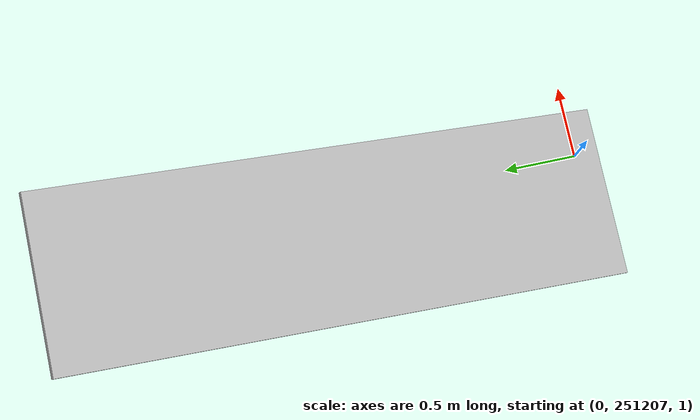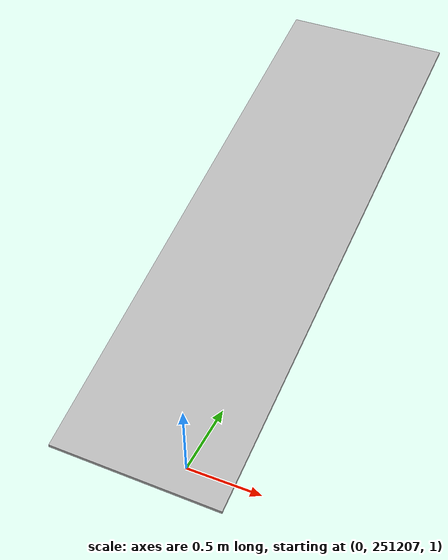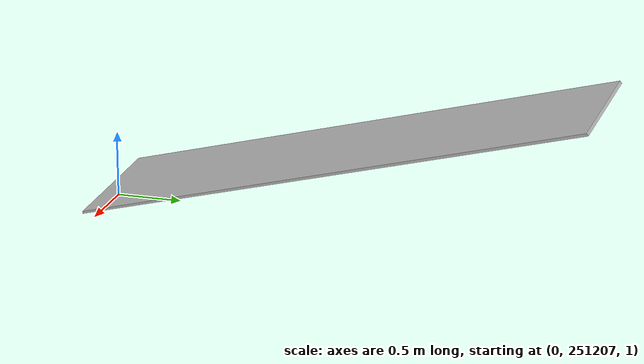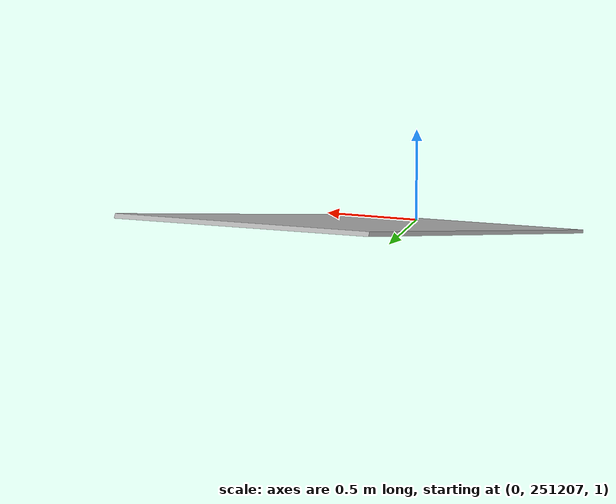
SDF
<?xml version="1.0" ?>
<sdf version="1.6">
  <model name="main_track_1">
    <static>true</static>
    <link name="main_link">

      <collision name="collision">
        <pose>-0,251207 1,730364 0.00 0 0 0</pose>
        <geometry>
          <mesh>
            <scale>1.0 1.0 1.0</scale>
            <uri>model://main_track_1/meshes/main_track.dae</uri>
          </mesh>
        </geometry>
        <surface>
        <friction>
          <ode>
            <mu>0.01</mu>
            <mu2>0.01</mu2>
          </ode>
        </friction>
      </surface>
      </collision>

      <visual name="visual">
        <pose>-0,251207 1,730364 0.01 0 0 0</pose>
        <geometry>
          <mesh>
            <scale>1.0 1.0 1.0</scale>
            <uri>model://main_track_1/meshes/main_track.dae</uri>
          </mesh>
        </geometry>
      </visual>

    </link>
  </model>
</sdf>
